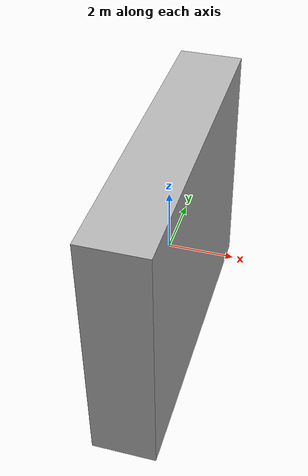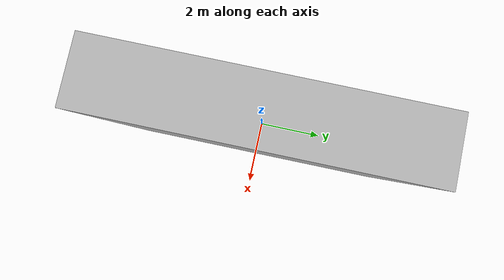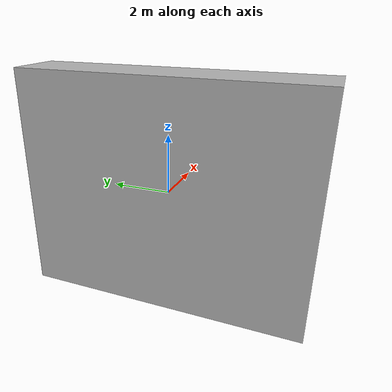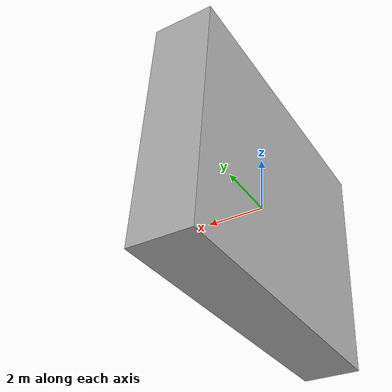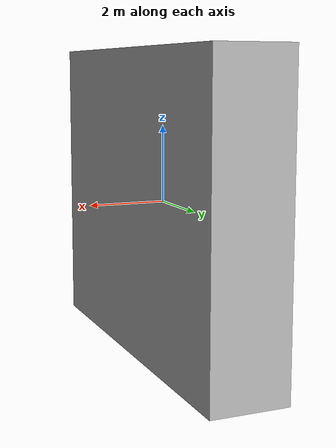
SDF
<?xml version="1.0" encoding="utf-8"?>
<sdf version='1.6'>

<model name='Wall'>
  <scale> 1 1 1 </scale>
  <link name="wall_link">
    <visual name="visual">
      <geometry>
        <box>
          <size>2 10 8</size>
        </box>
      </geometry>
      <material>
        <ambient>0.7 0.7 0.7 1</ambient>
        <diffuse>0.7 0.7 0.7 1</diffuse>
      </material>
    </visual>
    <collision name="collision">
      <geometry>
        <box>
          <size>2 10 8</size>
        </box>
      </geometry>
    </collision>
  </link>
</model>

</sdf>
